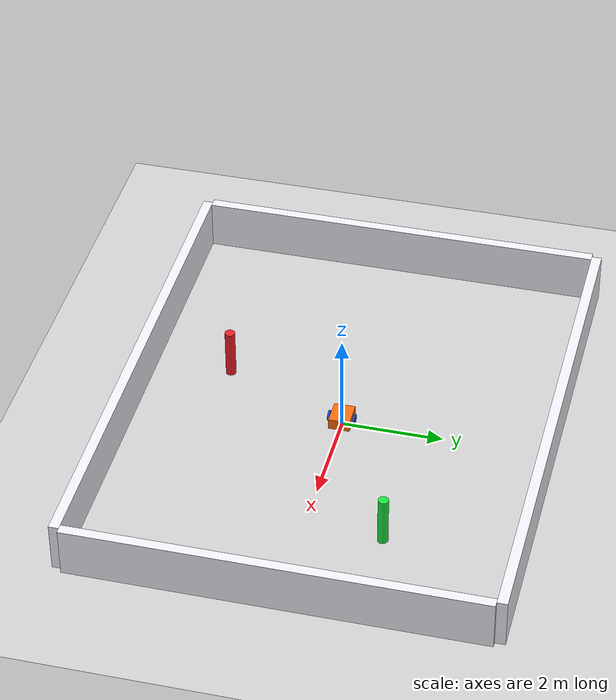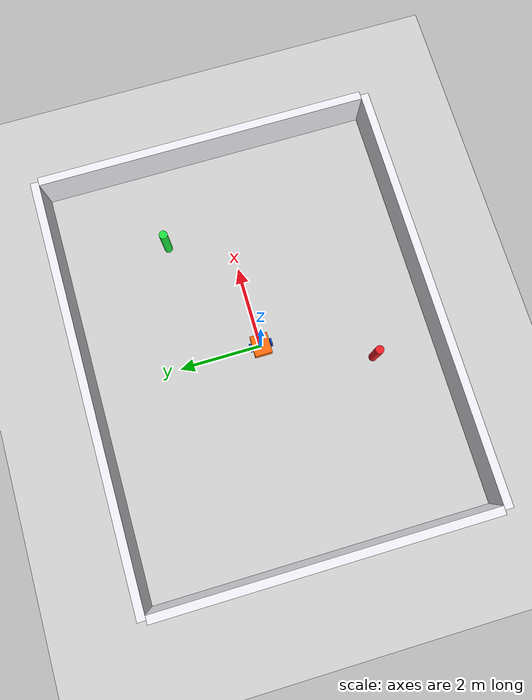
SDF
<?xml version="1.0"?>
<sdf version="1.9">
  <world name="stage4">
    <physics name="1ms" type="ignored">
      <max_step_size>0.001</max_step_size>
      <!-- Preserve 1 ms integration / 1 kHz IMU fidelity, but compute at
           half wall-clock speed to avoid monopolising a CPU core. -->
      <real_time_factor>0.5</real_time_factor>
      <real_time_update_rate>500</real_time_update_rate>
    </physics>
    <plugin filename="gz-sim-physics-system" name="gz::sim::systems::Physics"/>
    <plugin filename="gz-sim-user-commands-system" name="gz::sim::systems::UserCommands"/>
    <plugin filename="gz-sim-scene-broadcaster-system" name="gz::sim::systems::SceneBroadcaster"/>
    <plugin filename="gz-sim-sensors-system" name="gz::sim::systems::Sensors"><render_engine>ogre2</render_engine></plugin>
    <plugin filename="gz-sim-imu-system" name="gz::sim::systems::Imu"/>
    <gravity>0 0 -9.80665</gravity>
    <scene>
      <ambient>0.8 0.8 0.8 1</ambient>
      <background>0.65 0.78 0.9 1</background>
      <shadows>false</shadows>
    </scene>
    <light type="directional" name="sun">
      <pose>0 0 10 0 0 0</pose><direction>-0.4 0.2 -1</direction>
      <diffuse>1 1 1 1</diffuse><specular>0.25 0.25 0.25 1</specular>
      <cast_shadows>false</cast_shadows>
    </light>
    <model name="ground"><static>true</static><link name="link"><collision name="c"><geometry><plane><normal>0 0 1</normal><size>20 20</size></plane></geometry></collision><visual name="v"><geometry><plane><normal>0 0 1</normal><size>20 20</size></plane></geometry><material><ambient>0.72 0.72 0.72 1</ambient><diffuse>0.82 0.82 0.82 1</diffuse><specular>0.05 0.05 0.05 1</specular></material></visual></link></model>
    <!-- Inner faces form the same 10 x 8 m known map used by field.yaml. -->
    <model name="walls"><static>true</static><link name="link">
      <collision name="north"><pose>0 4.1 0.5 0 0 0</pose><geometry><box><size>10.2 0.2 1</size></box></geometry></collision>
      <collision name="south"><pose>0 -4.1 0.5 0 0 0</pose><geometry><box><size>10.2 0.2 1</size></box></geometry></collision>
      <collision name="east"><pose>5.1 0 0.5 0 0 0</pose><geometry><box><size>0.2 8 1</size></box></geometry></collision>
      <collision name="west"><pose>-5.1 0 0.5 0 0 0</pose><geometry><box><size>0.2 8 1</size></box></geometry></collision>
      <visual name="nv"><pose>0 4.1 0.5 0 0 0</pose><geometry><box><size>10.2 0.2 1</size></box></geometry><material><ambient>0.85 0.85 0.88 1</ambient><diffuse>0.95 0.95 0.98 1</diffuse></material></visual>
      <visual name="sv"><pose>0 -4.1 0.5 0 0 0</pose><geometry><box><size>10.2 0.2 1</size></box></geometry><material><ambient>0.85 0.85 0.88 1</ambient><diffuse>0.95 0.95 0.98 1</diffuse></material></visual>
      <visual name="ev"><pose>5.1 0 0.5 0 0 0</pose><geometry><box><size>0.2 8 1</size></box></geometry><material><ambient>0.85 0.85 0.88 1</ambient><diffuse>0.95 0.95 0.98 1</diffuse></material></visual>
      <visual name="wv"><pose>-5.1 0 0.5 0 0 0</pose><geometry><box><size>0.2 8 1</size></box></geometry><material><ambient>0.85 0.85 0.88 1</ambient><diffuse>0.95 0.95 0.98 1</diffuse></material></visual>
    </link></model>
    <model name="cylinder0"><static>true</static><pose>3 1.5 0.5 0 0 0</pose><link name="link"><collision name="c"><geometry><cylinder><radius>0.1</radius><length>1</length></cylinder></geometry></collision><visual name="v"><geometry><cylinder><radius>0.1</radius><length>1</length></cylinder></geometry><material><ambient>0.05 0.55 0.15 1</ambient><diffuse>0.1 0.9 0.25 1</diffuse></material></visual></link></model>
    <model name="cylinder1"><static>true</static><pose>-1 -2.5 0.5 0 0 0</pose><link name="link"><collision name="c"><geometry><cylinder><radius>0.1</radius><length>1</length></cylinder></geometry></collision><visual name="v"><geometry><cylinder><radius>0.1</radius><length>1</length></cylinder></geometry><material><ambient>0.55 0.05 0.08 1</ambient><diffuse>0.95 0.12 0.15 1</diffuse></material></visual></link></model>
    <model name="robot"><pose>0 0 0.16 0 0 0</pose><link name="base_link">
      <inertial><mass>18</mass><inertia><ixx>0.25</ixx><iyy>0.25</iyy><izz>0.4</izz></inertia></inertial>
      <collision name="body_collision"><geometry><box><size>0.5 0.42 0.22</size></box></geometry></collision><visual name="body_visual"><geometry><box><size>0.5 0.42 0.22</size></box></geometry><material><ambient>0.8 0.28 0.02 1</ambient><diffuse>1 0.42 0.04 1</diffuse><specular>0.3 0.3 0.3 1</specular></material></visual>
      <sensor name="imu" type="imu"><topic>/imu/data</topic><update_rate>1000</update_rate><always_on>true</always_on></sensor>
      <sensor name="lidar" type="gpu_lidar"><pose>0 0 0.16 0 0 0</pose><topic>/scan</topic><update_rate>40</update_rate><always_on>true</always_on><lidar><scan><horizontal><samples>1080</samples><resolution>1</resolution><min_angle>-2.35619449</min_angle><max_angle>2.35619449</max_angle></horizontal></scan><range><min>0.1</min><max>30</max><resolution>0.001</resolution></range><noise><type>gaussian</type><mean>0</mean><stddev>0.03</stddev></noise></lidar></sensor>
    </link>
    <link name="left_wheel"><pose>0 0.25 0 1.5708 0 0</pose><inertial><mass>1</mass><inertia><ixx>0.01</ixx><iyy>0.01</iyy><izz>0.01</izz></inertia></inertial><collision name="c"><geometry><cylinder><radius>0.10</radius><length>0.04</length></cylinder></geometry></collision><visual name="v"><geometry><cylinder><radius>0.10</radius><length>0.04</length></cylinder></geometry><material><ambient>0.02 0.15 0.5 1</ambient><diffuse>0.04 0.3 0.95 1</diffuse></material></visual></link>
    <link name="right_wheel"><pose>0 -0.25 0 1.5708 0 0</pose><inertial><mass>1</mass><inertia><ixx>0.01</ixx><iyy>0.01</iyy><izz>0.01</izz></inertia></inertial><collision name="c"><geometry><cylinder><radius>0.10</radius><length>0.04</length></cylinder></geometry></collision><visual name="v"><geometry><cylinder><radius>0.10</radius><length>0.04</length></cylinder></geometry><material><ambient>0.02 0.15 0.5 1</ambient><diffuse>0.04 0.3 0.95 1</diffuse></material></visual></link>
    <joint name="left_joint" type="revolute">
      <parent>base_link</parent><child>left_wheel</child>
      <!-- Joint origin and axis are expressed in the wheel frame.  The
           cylinder's local Z axis is its axle, so it spins in place instead
           of orbiting around the model origin. -->
      <pose relative_to="left_wheel">0 0 0 0 0 0</pose>
      <axis><xyz expressed_in="left_wheel">0 0 1</xyz></axis>
    </joint>
    <joint name="right_joint" type="revolute">
      <parent>base_link</parent><child>right_wheel</child>
      <pose relative_to="right_wheel">0 0 0 0 0 0</pose>
      <axis><xyz expressed_in="right_wheel">0 0 1</xyz></axis>
    </joint>
    <plugin filename="gz-sim-diff-drive-system" name="gz::sim::systems::DiffDrive"><left_joint>left_joint</left_joint><right_joint>right_joint</right_joint><wheel_separation>0.5</wheel_separation><wheel_radius>0.1</wheel_radius><topic>/cmd_vel</topic></plugin>
    <plugin filename="gz-sim-odometry-publisher-system" name="gz::sim::systems::OdometryPublisher"><odom_topic>/ground_truth_pose</odom_topic><odom_frame>map</odom_frame><robot_base_frame>base_link</robot_base_frame><dimensions>2</dimensions><odom_publish_frequency>100</odom_publish_frequency></plugin>
    </model>
  </world>
</sdf>
